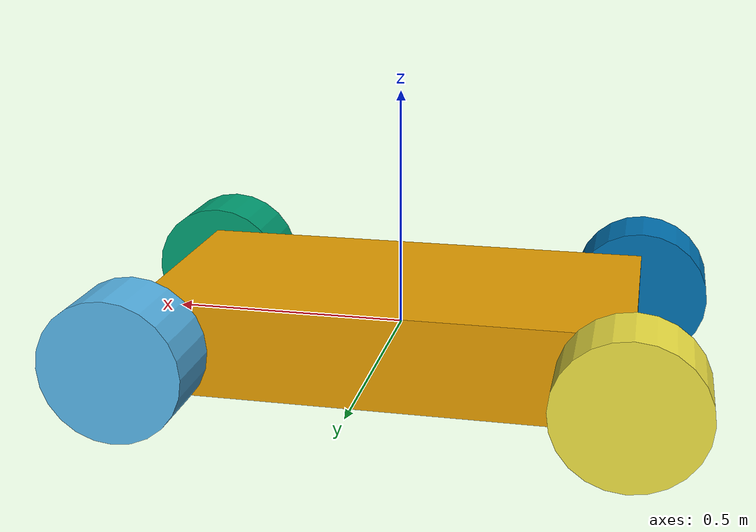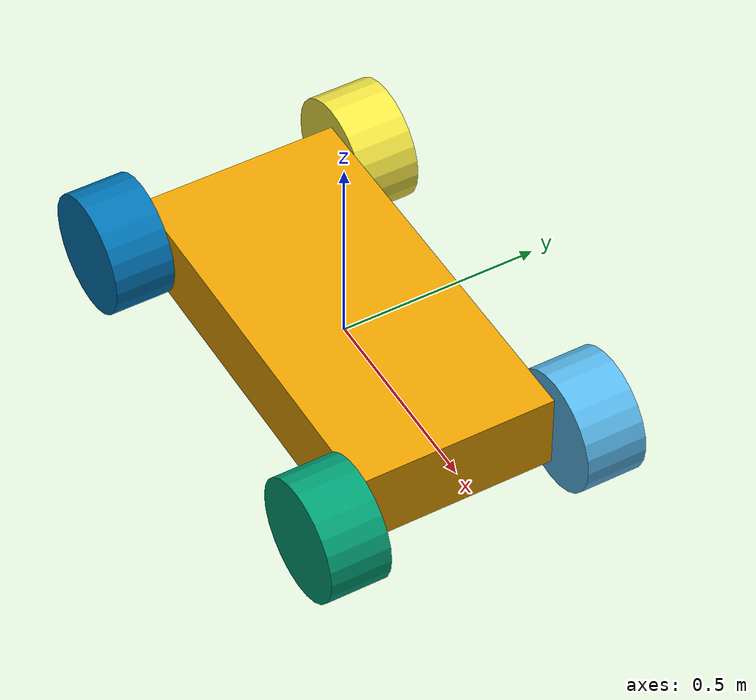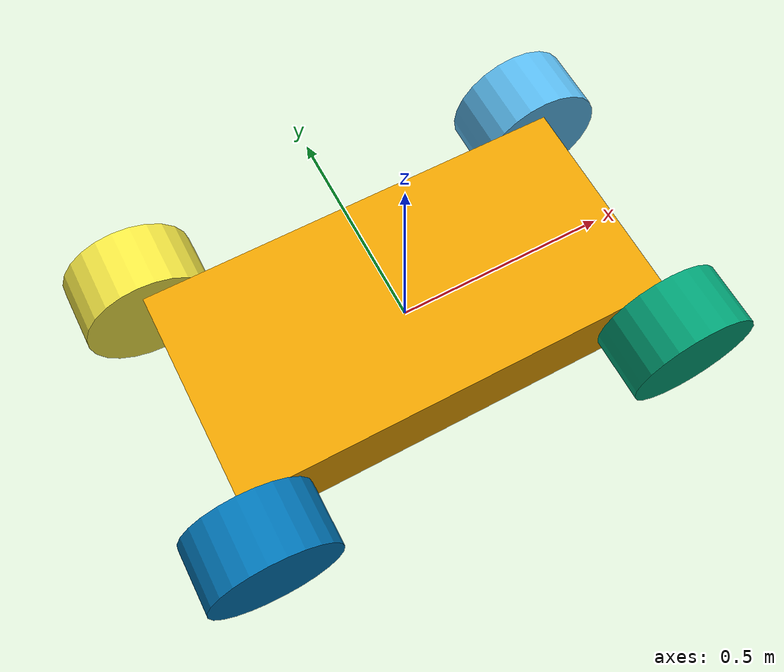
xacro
<?xml version="1.0"?>
<robot xmlns:xacro="http://www.ros.org/wiki/xacro" name="my_robot">

    <xacro:property name="wheel_radius" value="0.15"/>
    <xacro:property name="wheel_length" value="0.15"/>
    <xacro:property name="wheel_mass" value="2"/>
    <xacro:property name="body_length" value="1.0"/>
    <xacro:property name="body_width" value="0.5"/>
    <xacro:property name="body_height" value="0.5"/>
    <xacro:property name="body_mass" value="10"/>

    <xacro:macro name="set_wheel" params="position">
        <link name="${position}_wheel">
		    <visual>
                <xacro:if value="${position=='hg'}">
                    <origin xyz="0.0 ${wheel_length/2} 0.0" rpy="-1.57 0.0 0.0"/>
                </xacro:if>
                <xacro:if value="${position=='hd'}">
                    <origin xyz="0.0 ${-wheel_length/2} 0.0" rpy="-1.57 0.0 0.0"/>
                </xacro:if>
                <xacro:if value="${position=='bg'}">
                    <origin xyz="0.0 ${wheel_length/2} 0.0" rpy="-1.57 0.0 0.0"/>
                </xacro:if>
                <xacro:if value="${position=='bd'}">
                    <origin xyz="0.0 ${-wheel_length/2} 0.0" rpy="-1.57 0.0 0.0"/>
                </xacro:if>
			    <geometry>
				    <cylinder radius="${wheel_radius}" length="${wheel_length}"/>
			    </geometry>
		    </visual>

            <collision>
                <xacro:if value="${position=='hg'}">
                    <origin xyz="0.0 ${wheel_length/2} 0.0" rpy="-1.57 0.0 0.0"/>
                </xacro:if>
                <xacro:if value="${position=='hd'}">
                    <origin xyz="0.0 ${-wheel_length/2} 0.0" rpy="-1.57 0.0 0.0"/>
                </xacro:if>
                <xacro:if value="${position=='bg'}">
                    <origin xyz="0.0 ${wheel_length/2} 0.0" rpy="-1.57 0.0 0.0"/>
                </xacro:if>
                <xacro:if value="${position=='bd'}">
                    <origin xyz="0.0 ${-wheel_length/2} 0.0" rpy="-1.57 0.0 0.0"/>
                </xacro:if>
			    <geometry>
				    <cylinder radius="${wheel_radius}" length="${wheel_length}"/>
			    </geometry>
		    </collision>
            <xacro:cylinder_inertial mass="${wheel_mass}" r="${wheel_radius}" h="${wheel_length}"/>
	    </link>

        <joint name="${position}_wheel_joint" type="continuous">
            <xacro:if value="${position=='hg'}">
                <origin xyz="${body_length/2} ${body_width/2} 0.0" rpy="0.0 0.0 0.0"/>
            </xacro:if>
            <xacro:if value="${position=='hd'}">
                <origin xyz="${body_length/2} ${-body_width/2} 0.0" rpy="0.0 0.0 0.0"/>
            </xacro:if>
            <xacro:if value="${position=='bg'}">
                <origin xyz="${-body_length/2} ${body_width/2} 0.0" rpy="0.0 0.0 0.0"/>
            </xacro:if>
            <xacro:if value="${position=='bd'}">
                <origin xyz="${-body_length/2} ${-body_width/2} 0.0" rpy="0.0 0.0 0.0"/>
            </xacro:if>
            <parent link="base_link"/>
            <child link="${position}_wheel"/>
            <axis xyz="0.0 1 0.0"/>
        </joint>
    </xacro:macro>

        <!-- MACROS -->
    <xacro:macro name="box_inertial" params="mass l w h">
        <inertial>
                <mass value="${mass}" />
                <inertia ixx="${mass/3*(w*w + h*h)}" ixy="${mass/4*l*w}" ixz="${mass/4*l*h}"
                     iyy="${mass/3*(l*l + h*h)}" iyz="${mass/4*w*h}"
                     izz="${mass/3*(l*l + w*w)}" />
        </inertial>
    </xacro:macro>
    <xacro:macro name="cylinder_inertial" params="mass r h">
        <inertial>
                <mass value="${mass}" />
                <inertia ixx="${mass/12*(3*r*r + h*h)}" ixy="0.0" ixz="0.0"
                     iyy="${mass/12*(3*r*r + h*h)}" iyz="0.0"
                     izz="${mass/2*(r*r)}" />
        </inertial>
    </xacro:macro>
    <xacro:macro name="spherus_inertial" params="mass r">
        <inertial>
                <mass value="${mass}" />
                <inertia ixx="${mass/5*2*(r*r)}" ixy="0.0" ixz="0.0"
                     iyy="${mass/5*2*(r*r)}" iyz="0.0"
                     izz="${mass/5*2*(r*r)}" />
        </inertial>
    </xacro:macro>

	<link name="base_link">
		<visual>
			<geometry>
				<box size="${body_length} ${body_width} 0.2"/>
			</geometry>
		</visual>
        <xacro:box_inertial mass="${body_mass}" l="${body_length}" w="${body_width}" h="${body_height}"/>
	</link>

    <xacro:set_wheel position="hg"/>
    <xacro:set_wheel position="hd"/>
    <xacro:set_wheel position="bg"/>
    <xacro:set_wheel position="bd"/>
</robot>
